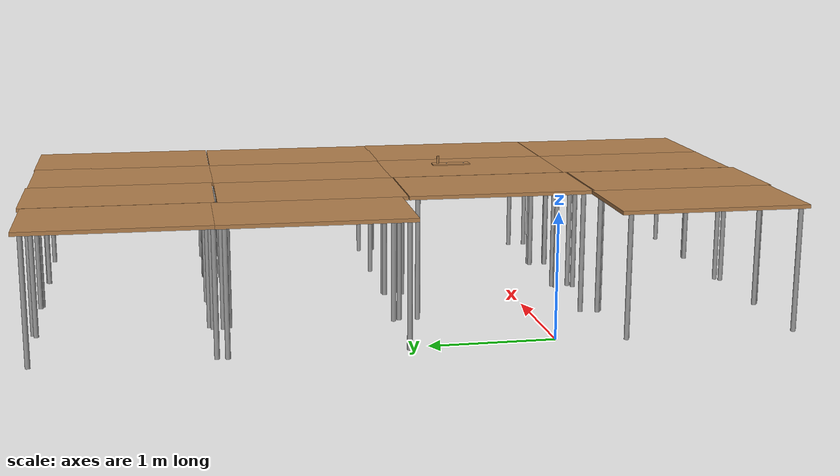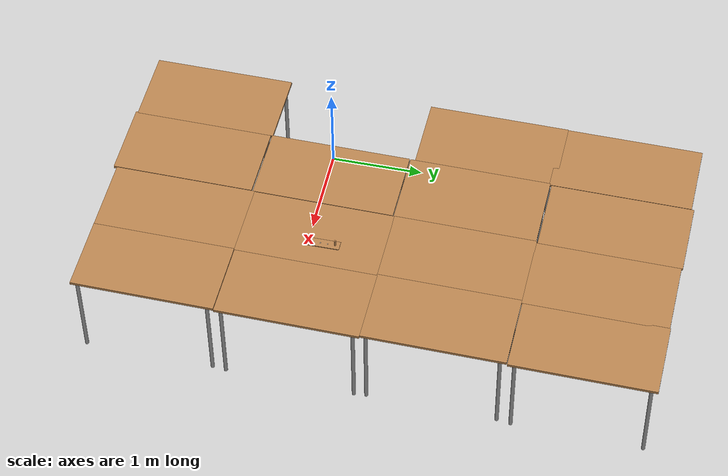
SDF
<sdf version="1.6">
 <world name="default">
  <light name="sun" type="directional">
   <pose>0 0 10 0 -0 0</pose>
   <diffuse>0.8 0.8 0.8 1</diffuse>
   <specular>0.2 0.2 0.2 1</specular>
   <attenuation>
    <range>1000</range>
    <constant>0.9</constant>
    <linear>0.01</linear>
    <quadratic>0.001</quadratic>
   </attenuation>
   <direction>-0.5 0.1 -0.9</direction>
  </light>
  <gravity>0 0 -9.8</gravity>
  <magnetic_field>6e-06 2.3e-05 -4.2e-05</magnetic_field>
  <atmosphere type="adiabatic"/>
  <physics name="default_physics" default="0" type="ode">
   <max_step_size>0.001</max_step_size>
   <real_time_factor>1</real_time_factor>
   <real_time_update_rate>1000</real_time_update_rate>
  </physics>
  <scene><ambient>0.4 0.4 0.4 1</ambient><background>0.7 0.7 0.7 1</background><shadows>1</shadows></scene>
  <spherical_coordinates>
   <surface_model>EARTH_WGS84</surface_model>
   <latitude_deg>0</latitude_deg>
   <longitude_deg>0</longitude_deg>
   <elevation>0</elevation>
   <heading_deg>0</heading_deg>
  </spherical_coordinates>
  <light name="user_directional_light_1" type="directional">
   <pose>121.651 -28.8382 1 0 -0 0</pose>
   <diffuse>0.5 0.5 0.5 1</diffuse>
   <specular>0.1 0.1 0.1 1</specular>
   <direction>0.1 0.1 -0.9</direction>
   <attenuation>
    <range>20</range>
    <constant>0.5</constant>
    <linear>0.01</linear>
    <quadratic>0.001</quadratic>
   </attenuation>
  </light>
  <model name="table">
   <static>1</static>
   <link name="link">
    <collision name="surface">
     <pose>0 0 1 0 -0 0</pose>
     <geometry><box><size>1.5 0.8 0.03</size></box></geometry>
     <surface><friction><ode><mu>0.6</mu><mu2>0.6</mu2></ode></friction></surface>
    </collision>
    <visual name="visual1">
     <pose>0 0 1 0 -0 0</pose>
     <geometry><box><size>1.5 0.8 0.03</size></box></geometry>
     <material>
      <script><uri>file://media/materials/scripts/gazebo.material</uri><name>Gazebo/Wood</name></script>
     </material>
    </visual>
    <collision name="front_left_leg">
     <pose>0.68 0.38 0.5 0 -0 0</pose>
     <geometry><cylinder><radius>0.02</radius><length>1</length></cylinder></geometry>
    </collision>
    <visual name="front_left_leg">
     <pose>0.68 0.38 0.5 0 -0 0</pose>
     <geometry><cylinder><radius>0.02</radius><length>1</length></cylinder></geometry>
     <material>
      <script><uri>file://media/materials/scripts/gazebo.material</uri><name>Gazebo/Grey</name></script>
     </material>
    </visual>
    <collision name="front_right_leg">
     <pose>0.68 -0.38 0.5 0 -0 0</pose>
     <geometry><cylinder><radius>0.02</radius><length>1</length></cylinder></geometry>
    </collision>
    <visual name="front_right_leg">
     <pose>0.68 -0.38 0.5 0 -0 0</pose>
     <geometry><cylinder><radius>0.02</radius><length>1</length></cylinder></geometry>
     <material>
      <script><uri>file://media/materials/scripts/gazebo.material</uri><name>Gazebo/Grey</name></script>
     </material>
    </visual>
    <collision name="back_right_leg">
     <pose>-0.68 -0.38 0.5 0 -0 0</pose>
     <geometry><cylinder><radius>0.02</radius><length>1</length></cylinder></geometry>
    </collision>
    <visual name="back_right_leg">
     <pose>-0.68 -0.38 0.5 0 -0 0</pose>
     <geometry><cylinder><radius>0.02</radius><length>1</length></cylinder></geometry>
     <material>
      <script><uri>file://media/materials/scripts/gazebo.material</uri><name>Gazebo/Grey</name></script>
     </material>
    </visual>
    <collision name="back_left_leg">
     <pose>-0.68 0.38 0.5 0 -0 0</pose>
     <geometry><cylinder><radius>0.02</radius><length>1</length></cylinder></geometry>
    </collision>
    <visual name="back_left_leg">
     <pose>-0.68 0.38 0.5 0 -0 0</pose>
     <geometry><cylinder><radius>0.02</radius><length>1</length></cylinder></geometry>
     <material>
      <script><uri>file://media/materials/scripts/gazebo.material</uri><name>Gazebo/Grey</name></script>
     </material>
    </visual>
   </link>
   <pose>1.0932 0.255722 0 0 0 -1.58617</pose>
  </model>
  <model name="table_clone">
   <static>1</static>
   <link name="link">
    <collision name="surface">
     <pose>0 0 1 0 -0 0</pose>
     <geometry><box><size>1.5 0.8 0.03</size></box></geometry>
     <surface><friction><ode><mu>0.6</mu><mu2>0.6</mu2></ode></friction></surface>
    </collision>
    <visual name="visual1">
     <pose>0 0 1 0 -0 0</pose>
     <geometry><box><size>1.5 0.8 0.03</size></box></geometry>
     <material>
      <script><uri>file://media/materials/scripts/gazebo.material</uri><name>Gazebo/Wood</name></script>
     </material>
    </visual>
    <collision name="front_left_leg">
     <pose>0.68 0.38 0.5 0 -0 0</pose>
     <geometry><cylinder><radius>0.02</radius><length>1</length></cylinder></geometry>
    </collision>
    <visual name="front_left_leg">
     <pose>0.68 0.38 0.5 0 -0 0</pose>
     <geometry><cylinder><radius>0.02</radius><length>1</length></cylinder></geometry>
     <material>
      <script><uri>file://media/materials/scripts/gazebo.material</uri><name>Gazebo/Grey</name></script>
     </material>
    </visual>
    <collision name="front_right_leg">
     <pose>0.68 -0.38 0.5 0 -0 0</pose>
     <geometry><cylinder><radius>0.02</radius><length>1</length></cylinder></geometry>
    </collision>
    <visual name="front_right_leg">
     <pose>0.68 -0.38 0.5 0 -0 0</pose>
     <geometry><cylinder><radius>0.02</radius><length>1</length></cylinder></geometry>
     <material>
      <script><uri>file://media/materials/scripts/gazebo.material</uri><name>Gazebo/Grey</name></script>
     </material>
    </visual>
    <collision name="back_right_leg">
     <pose>-0.68 -0.38 0.5 0 -0 0</pose>
     <geometry><cylinder><radius>0.02</radius><length>1</length></cylinder></geometry>
    </collision>
    <visual name="back_right_leg">
     <pose>-0.68 -0.38 0.5 0 -0 0</pose>
     <geometry><cylinder><radius>0.02</radius><length>1</length></cylinder></geometry>
     <material>
      <script><uri>file://media/materials/scripts/gazebo.material</uri><name>Gazebo/Grey</name></script>
     </material>
    </visual>
    <collision name="back_left_leg">
     <pose>-0.68 0.38 0.5 0 -0 0</pose>
     <geometry><cylinder><radius>0.02</radius><length>1</length></cylinder></geometry>
    </collision>
    <visual name="back_left_leg">
     <pose>-0.68 0.38 0.5 0 -0 0</pose>
     <geometry><cylinder><radius>0.02</radius><length>1</length></cylinder></geometry>
     <material>
      <script><uri>file://media/materials/scripts/gazebo.material</uri><name>Gazebo/Grey</name></script>
     </material>
    </visual>
   </link>
   <pose>1.11915 1.76451 0 0 0 -1.58617</pose>
  </model>
  <model name="table_clone_0">
   <static>1</static>
   <link name="link">
    <collision name="surface">
     <pose>0 0 1 0 -0 0</pose>
     <geometry><box><size>1.5 0.8 0.03</size></box></geometry>
     <surface><friction><ode><mu>0.6</mu><mu2>0.6</mu2></ode></friction></surface>
    </collision>
    <visual name="visual1">
     <pose>0 0 1 0 -0 0</pose>
     <geometry><box><size>1.5 0.8 0.03</size></box></geometry>
     <material>
      <script><uri>file://media/materials/scripts/gazebo.material</uri><name>Gazebo/Wood</name></script>
     </material>
    </visual>
    <collision name="front_left_leg">
     <pose>0.68 0.38 0.5 0 -0 0</pose>
     <geometry><cylinder><radius>0.02</radius><length>1</length></cylinder></geometry>
    </collision>
    <visual name="front_left_leg">
     <pose>0.68 0.38 0.5 0 -0 0</pose>
     <geometry><cylinder><radius>0.02</radius><length>1</length></cylinder></geometry>
     <material>
      <script><uri>file://media/materials/scripts/gazebo.material</uri><name>Gazebo/Grey</name></script>
     </material>
    </visual>
    <collision name="front_right_leg">
     <pose>0.68 -0.38 0.5 0 -0 0</pose>
     <geometry><cylinder><radius>0.02</radius><length>1</length></cylinder></geometry>
    </collision>
    <visual name="front_right_leg">
     <pose>0.68 -0.38 0.5 0 -0 0</pose>
     <geometry><cylinder><radius>0.02</radius><length>1</length></cylinder></geometry>
     <material>
      <script><uri>file://media/materials/scripts/gazebo.material</uri><name>Gazebo/Grey</name></script>
     </material>
    </visual>
    <collision name="back_right_leg">
     <pose>-0.68 -0.38 0.5 0 -0 0</pose>
     <geometry><cylinder><radius>0.02</radius><length>1</length></cylinder></geometry>
    </collision>
    <visual name="back_right_leg">
     <pose>-0.68 -0.38 0.5 0 -0 0</pose>
     <geometry><cylinder><radius>0.02</radius><length>1</length></cylinder></geometry>
     <material>
      <script><uri>file://media/materials/scripts/gazebo.material</uri><name>Gazebo/Grey</name></script>
     </material>
    </visual>
    <collision name="back_left_leg">
     <pose>-0.68 0.38 0.5 0 -0 0</pose>
     <geometry><cylinder><radius>0.02</radius><length>1</length></cylinder></geometry>
    </collision>
    <visual name="back_left_leg">
     <pose>-0.68 0.38 0.5 0 -0 0</pose>
     <geometry><cylinder><radius>0.02</radius><length>1</length></cylinder></geometry>
     <material>
      <script><uri>file://media/materials/scripts/gazebo.material</uri><name>Gazebo/Grey</name></script>
     </material>
    </visual>
   </link>
   <pose>1.06396 -1.2587 0 0 0 -1.58617</pose>
  </model>
  <model name="table_clone_1">
   <static>1</static>
   <link name="link">
    <collision name="surface">
     <pose>0 0 1 0 -0 0</pose>
     <geometry><box><size>1.5 0.8 0.03</size></box></geometry>
     <surface><friction><ode><mu>0.6</mu><mu2>0.6</mu2></ode></friction></surface>
    </collision>
    <visual name="visual1">
     <pose>0 0 1 0 -0 0</pose>
     <geometry><box><size>1.5 0.8 0.03</size></box></geometry>
     <material>
      <script><uri>file://media/materials/scripts/gazebo.material</uri><name>Gazebo/Wood</name></script>
     </material>
    </visual>
    <collision name="front_left_leg">
     <pose>0.68 0.38 0.5 0 -0 0</pose>
     <geometry><cylinder><radius>0.02</radius><length>1</length></cylinder></geometry>
    </collision>
    <visual name="front_left_leg">
     <pose>0.68 0.38 0.5 0 -0 0</pose>
     <geometry><cylinder><radius>0.02</radius><length>1</length></cylinder></geometry>
     <material>
      <script><uri>file://media/materials/scripts/gazebo.material</uri><name>Gazebo/Grey</name></script>
     </material>
    </visual>
    <collision name="front_right_leg">
     <pose>0.68 -0.38 0.5 0 -0 0</pose>
     <geometry><cylinder><radius>0.02</radius><length>1</length></cylinder></geometry>
    </collision>
    <visual name="front_right_leg">
     <pose>0.68 -0.38 0.5 0 -0 0</pose>
     <geometry><cylinder><radius>0.02</radius><length>1</length></cylinder></geometry>
     <material>
      <script><uri>file://media/materials/scripts/gazebo.material</uri><name>Gazebo/Grey</name></script>
     </material>
    </visual>
    <collision name="back_right_leg">
     <pose>-0.68 -0.38 0.5 0 -0 0</pose>
     <geometry><cylinder><radius>0.02</radius><length>1</length></cylinder></geometry>
    </collision>
    <visual name="back_right_leg">
     <pose>-0.68 -0.38 0.5 0 -0 0</pose>
     <geometry><cylinder><radius>0.02</radius><length>1</length></cylinder></geometry>
     <material>
      <script><uri>file://media/materials/scripts/gazebo.material</uri><name>Gazebo/Grey</name></script>
     </material>
    </visual>
    <collision name="back_left_leg">
     <pose>-0.68 0.38 0.5 0 -0 0</pose>
     <geometry><cylinder><radius>0.02</radius><length>1</length></cylinder></geometry>
    </collision>
    <visual name="back_left_leg">
     <pose>-0.68 0.38 0.5 0 -0 0</pose>
     <geometry><cylinder><radius>0.02</radius><length>1</length></cylinder></geometry>
     <material>
      <script><uri>file://media/materials/scripts/gazebo.material</uri><name>Gazebo/Grey</name></script>
     </material>
    </visual>
   </link>
   <pose>1.91726 1.7593 0 0 0 -1.58617</pose>
  </model>
  <model name="table_clone_2">
   <static>1</static>
   <link name="link">
    <collision name="surface">
     <pose>0 0 1 0 -0 0</pose>
     <geometry><box><size>1.5 0.8 0.03</size></box></geometry>
     <surface><friction><ode><mu>0.6</mu><mu2>0.6</mu2></ode></friction></surface>
    </collision>
    <visual name="visual1">
     <pose>0 0 1 0 -0 0</pose>
     <geometry><box><size>1.5 0.8 0.03</size></box></geometry>
     <material>
      <script><uri>file://media/materials/scripts/gazebo.material</uri><name>Gazebo/Wood</name></script>
     </material>
    </visual>
    <collision name="front_left_leg">
     <pose>0.68 0.38 0.5 0 -0 0</pose>
     <geometry><cylinder><radius>0.02</radius><length>1</length></cylinder></geometry>
    </collision>
    <visual name="front_left_leg">
     <pose>0.68 0.38 0.5 0 -0 0</pose>
     <geometry><cylinder><radius>0.02</radius><length>1</length></cylinder></geometry>
     <material>
      <script><uri>file://media/materials/scripts/gazebo.material</uri><name>Gazebo/Grey</name></script>
     </material>
    </visual>
    <collision name="front_right_leg">
     <pose>0.68 -0.38 0.5 0 -0 0</pose>
     <geometry><cylinder><radius>0.02</radius><length>1</length></cylinder></geometry>
    </collision>
    <visual name="front_right_leg">
     <pose>0.68 -0.38 0.5 0 -0 0</pose>
     <geometry><cylinder><radius>0.02</radius><length>1</length></cylinder></geometry>
     <material>
      <script><uri>file://media/materials/scripts/gazebo.material</uri><name>Gazebo/Grey</name></script>
     </material>
    </visual>
    <collision name="back_right_leg">
     <pose>-0.68 -0.38 0.5 0 -0 0</pose>
     <geometry><cylinder><radius>0.02</radius><length>1</length></cylinder></geometry>
    </collision>
    <visual name="back_right_leg">
     <pose>-0.68 -0.38 0.5 0 -0 0</pose>
     <geometry><cylinder><radius>0.02</radius><length>1</length></cylinder></geometry>
     <material>
      <script><uri>file://media/materials/scripts/gazebo.material</uri><name>Gazebo/Grey</name></script>
     </material>
    </visual>
    <collision name="back_left_leg">
     <pose>-0.68 0.38 0.5 0 -0 0</pose>
     <geometry><cylinder><radius>0.02</radius><length>1</length></cylinder></geometry>
    </collision>
    <visual name="back_left_leg">
     <pose>-0.68 0.38 0.5 0 -0 0</pose>
     <geometry><cylinder><radius>0.02</radius><length>1</length></cylinder></geometry>
     <material>
      <script><uri>file://media/materials/scripts/gazebo.material</uri><name>Gazebo/Grey</name></script>
     </material>
    </visual>
   </link>
   <pose>1.8988 0.262927 0 0 0 -1.58617</pose>
  </model>
  <model name="table_clone_3">
   <static>1</static>
   <link name="link">
    <collision name="surface">
     <pose>0 0 1 0 -0 0</pose>
     <geometry><box><size>1.5 0.8 0.03</size></box></geometry>
     <surface><friction><ode><mu>0.6</mu><mu2>0.6</mu2></ode></friction></surface>
    </collision>
    <visual name="visual1">
     <pose>0 0 1 0 -0 0</pose>
     <geometry><box><size>1.5 0.8 0.03</size></box></geometry>
     <material>
      <script><uri>file://media/materials/scripts/gazebo.material</uri><name>Gazebo/Wood</name></script>
     </material>
    </visual>
    <collision name="front_left_leg">
     <pose>0.68 0.38 0.5 0 -0 0</pose>
     <geometry><cylinder><radius>0.02</radius><length>1</length></cylinder></geometry>
    </collision>
    <visual name="front_left_leg">
     <pose>0.68 0.38 0.5 0 -0 0</pose>
     <geometry><cylinder><radius>0.02</radius><length>1</length></cylinder></geometry>
     <material>
      <script><uri>file://media/materials/scripts/gazebo.material</uri><name>Gazebo/Grey</name></script>
     </material>
    </visual>
    <collision name="front_right_leg">
     <pose>0.68 -0.38 0.5 0 -0 0</pose>
     <geometry><cylinder><radius>0.02</radius><length>1</length></cylinder></geometry>
    </collision>
    <visual name="front_right_leg">
     <pose>0.68 -0.38 0.5 0 -0 0</pose>
     <geometry><cylinder><radius>0.02</radius><length>1</length></cylinder></geometry>
     <material>
      <script><uri>file://media/materials/scripts/gazebo.material</uri><name>Gazebo/Grey</name></script>
     </material>
    </visual>
    <collision name="back_right_leg">
     <pose>-0.68 -0.38 0.5 0 -0 0</pose>
     <geometry><cylinder><radius>0.02</radius><length>1</length></cylinder></geometry>
    </collision>
    <visual name="back_right_leg">
     <pose>-0.68 -0.38 0.5 0 -0 0</pose>
     <geometry><cylinder><radius>0.02</radius><length>1</length></cylinder></geometry>
     <material>
      <script><uri>file://media/materials/scripts/gazebo.material</uri><name>Gazebo/Grey</name></script>
     </material>
    </visual>
    <collision name="back_left_leg">
     <pose>-0.68 0.38 0.5 0 -0 0</pose>
     <geometry><cylinder><radius>0.02</radius><length>1</length></cylinder></geometry>
    </collision>
    <visual name="back_left_leg">
     <pose>-0.68 0.38 0.5 0 -0 0</pose>
     <geometry><cylinder><radius>0.02</radius><length>1</length></cylinder></geometry>
     <material>
      <script><uri>file://media/materials/scripts/gazebo.material</uri><name>Gazebo/Grey</name></script>
     </material>
    </visual>
   </link>
   <pose>1.8696 -1.23565 0 0 0 -1.58617</pose>
  </model>
  <model name="table_clone_4">
   <static>1</static>
   <link name="link">
    <collision name="surface">
     <pose>0 0 1 0 -0 0</pose>
     <geometry><box><size>1.5 0.8 0.03</size></box></geometry>
     <surface><friction><ode><mu>0.6</mu><mu2>0.6</mu2></ode></friction></surface>
    </collision>
    <visual name="visual1">
     <pose>0 0 1 0 -0 0</pose>
     <geometry><box><size>1.5 0.8 0.03</size></box></geometry>
     <material>
      <script><uri>file://media/materials/scripts/gazebo.material</uri><name>Gazebo/Wood</name></script>
     </material>
    </visual>
    <collision name="front_left_leg">
     <pose>0.68 0.38 0.5 0 -0 0</pose>
     <geometry><cylinder><radius>0.02</radius><length>1</length></cylinder></geometry>
    </collision>
    <visual name="front_left_leg">
     <pose>0.68 0.38 0.5 0 -0 0</pose>
     <geometry><cylinder><radius>0.02</radius><length>1</length></cylinder></geometry>
     <material>
      <script><uri>file://media/materials/scripts/gazebo.material</uri><name>Gazebo/Grey</name></script>
     </material>
    </visual>
    <collision name="front_right_leg">
     <pose>0.68 -0.38 0.5 0 -0 0</pose>
     <geometry><cylinder><radius>0.02</radius><length>1</length></cylinder></geometry>
    </collision>
    <visual name="front_right_leg">
     <pose>0.68 -0.38 0.5 0 -0 0</pose>
     <geometry><cylinder><radius>0.02</radius><length>1</length></cylinder></geometry>
     <material>
      <script><uri>file://media/materials/scripts/gazebo.material</uri><name>Gazebo/Grey</name></script>
     </material>
    </visual>
    <collision name="back_right_leg">
     <pose>-0.68 -0.38 0.5 0 -0 0</pose>
     <geometry><cylinder><radius>0.02</radius><length>1</length></cylinder></geometry>
    </collision>
    <visual name="back_right_leg">
     <pose>-0.68 -0.38 0.5 0 -0 0</pose>
     <geometry><cylinder><radius>0.02</radius><length>1</length></cylinder></geometry>
     <material>
      <script><uri>file://media/materials/scripts/gazebo.material</uri><name>Gazebo/Grey</name></script>
     </material>
    </visual>
    <collision name="back_left_leg">
     <pose>-0.68 0.38 0.5 0 -0 0</pose>
     <geometry><cylinder><radius>0.02</radius><length>1</length></cylinder></geometry>
    </collision>
    <visual name="back_left_leg">
     <pose>-0.68 0.38 0.5 0 -0 0</pose>
     <geometry><cylinder><radius>0.02</radius><length>1</length></cylinder></geometry>
     <material>
      <script><uri>file://media/materials/scripts/gazebo.material</uri><name>Gazebo/Grey</name></script>
     </material>
    </visual>
   </link>
   <pose>2.705 1.74387 0 0 0 -1.58617</pose>
  </model>
  <model name="table_clone_5">
   <static>1</static>
   <link name="link">
    <collision name="surface">
     <pose>0 0 1 0 -0 0</pose>
     <geometry><box><size>1.5 0.8 0.03</size></box></geometry>
     <surface><friction><ode><mu>0.6</mu><mu2>0.6</mu2></ode></friction></surface>
    </collision>
    <visual name="visual1">
     <pose>0 0 1 0 -0 0</pose>
     <geometry><box><size>1.5 0.8 0.03</size></box></geometry>
     <material>
      <script><uri>file://media/materials/scripts/gazebo.material</uri><name>Gazebo/Wood</name></script>
     </material>
    </visual>
    <collision name="front_left_leg">
     <pose>0.68 0.38 0.5 0 -0 0</pose>
     <geometry><cylinder><radius>0.02</radius><length>1</length></cylinder></geometry>
    </collision>
    <visual name="front_left_leg">
     <pose>0.68 0.38 0.5 0 -0 0</pose>
     <geometry><cylinder><radius>0.02</radius><length>1</length></cylinder></geometry>
     <material>
      <script><uri>file://media/materials/scripts/gazebo.material</uri><name>Gazebo/Grey</name></script>
     </material>
    </visual>
    <collision name="front_right_leg">
     <pose>0.68 -0.38 0.5 0 -0 0</pose>
     <geometry><cylinder><radius>0.02</radius><length>1</length></cylinder></geometry>
    </collision>
    <visual name="front_right_leg">
     <pose>0.68 -0.38 0.5 0 -0 0</pose>
     <geometry><cylinder><radius>0.02</radius><length>1</length></cylinder></geometry>
     <material>
      <script><uri>file://media/materials/scripts/gazebo.material</uri><name>Gazebo/Grey</name></script>
     </material>
    </visual>
    <collision name="back_right_leg">
     <pose>-0.68 -0.38 0.5 0 -0 0</pose>
     <geometry><cylinder><radius>0.02</radius><length>1</length></cylinder></geometry>
    </collision>
    <visual name="back_right_leg">
     <pose>-0.68 -0.38 0.5 0 -0 0</pose>
     <geometry><cylinder><radius>0.02</radius><length>1</length></cylinder></geometry>
     <material>
      <script><uri>file://media/materials/scripts/gazebo.material</uri><name>Gazebo/Grey</name></script>
     </material>
    </visual>
    <collision name="back_left_leg">
     <pose>-0.68 0.38 0.5 0 -0 0</pose>
     <geometry><cylinder><radius>0.02</radius><length>1</length></cylinder></geometry>
    </collision>
    <visual name="back_left_leg">
     <pose>-0.68 0.38 0.5 0 -0 0</pose>
     <geometry><cylinder><radius>0.02</radius><length>1</length></cylinder></geometry>
     <material>
      <script><uri>file://media/materials/scripts/gazebo.material</uri><name>Gazebo/Grey</name></script>
     </material>
    </visual>
   </link>
   <pose>2.69696 0.255898 0 0 0 -1.58617</pose>
  </model>
  <model name="table_clone_6">
   <static>1</static>
   <link name="link">
    <collision name="surface">
     <pose>0 0 1 0 -0 0</pose>
     <geometry><box><size>1.5 0.8 0.03</size></box></geometry>
     <surface><friction><ode><mu>0.6</mu><mu2>0.6</mu2></ode></friction></surface>
    </collision>
    <visual name="visual1">
     <pose>0 0 1 0 -0 0</pose>
     <geometry><box><size>1.5 0.8 0.03</size></box></geometry>
     <material>
      <script><uri>file://media/materials/scripts/gazebo.material</uri><name>Gazebo/Wood</name></script>
     </material>
    </visual>
    <collision name="front_left_leg">
     <pose>0.68 0.38 0.5 0 -0 0</pose>
     <geometry><cylinder><radius>0.02</radius><length>1</length></cylinder></geometry>
    </collision>
    <visual name="front_left_leg">
     <pose>0.68 0.38 0.5 0 -0 0</pose>
     <geometry><cylinder><radius>0.02</radius><length>1</length></cylinder></geometry>
     <material>
      <script><uri>file://media/materials/scripts/gazebo.material</uri><name>Gazebo/Grey</name></script>
     </material>
    </visual>
    <collision name="front_right_leg">
     <pose>0.68 -0.38 0.5 0 -0 0</pose>
     <geometry><cylinder><radius>0.02</radius><length>1</length></cylinder></geometry>
    </collision>
    <visual name="front_right_leg">
     <pose>0.68 -0.38 0.5 0 -0 0</pose>
     <geometry><cylinder><radius>0.02</radius><length>1</length></cylinder></geometry>
     <material>
      <script><uri>file://media/materials/scripts/gazebo.material</uri><name>Gazebo/Grey</name></script>
     </material>
    </visual>
    <collision name="back_right_leg">
     <pose>-0.68 -0.38 0.5 0 -0 0</pose>
     <geometry><cylinder><radius>0.02</radius><length>1</length></cylinder></geometry>
    </collision>
    <visual name="back_right_leg">
     <pose>-0.68 -0.38 0.5 0 -0 0</pose>
     <geometry><cylinder><radius>0.02</radius><length>1</length></cylinder></geometry>
     <material>
      <script><uri>file://media/materials/scripts/gazebo.material</uri><name>Gazebo/Grey</name></script>
     </material>
    </visual>
    <collision name="back_left_leg">
     <pose>-0.68 0.38 0.5 0 -0 0</pose>
     <geometry><cylinder><radius>0.02</radius><length>1</length></cylinder></geometry>
    </collision>
    <visual name="back_left_leg">
     <pose>-0.68 0.38 0.5 0 -0 0</pose>
     <geometry><cylinder><radius>0.02</radius><length>1</length></cylinder></geometry>
     <material>
      <script><uri>file://media/materials/scripts/gazebo.material</uri><name>Gazebo/Grey</name></script>
     </material>
    </visual>
   </link>
   <pose>2.66103 -1.24933 0 0 0 -1.58617</pose>
  </model>
  <model name="table_clone_7">
   <static>1</static>
   <link name="link">
    <collision name="surface">
     <pose>0 0 1 0 -0 0</pose>
     <geometry><box><size>1.5 0.8 0.03</size></box></geometry>
     <surface><friction><ode><mu>0.6</mu><mu2>0.6</mu2></ode></friction></surface>
    </collision>
    <visual name="visual1">
     <pose>0 0 1 0 -0 0</pose>
     <geometry><box><size>1.5 0.8 0.03</size></box></geometry>
     <material>
      <script><uri>file://media/materials/scripts/gazebo.material</uri><name>Gazebo/Wood</name></script>
     </material>
    </visual>
    <collision name="front_left_leg">
     <pose>0.68 0.38 0.5 0 -0 0</pose>
     <geometry><cylinder><radius>0.02</radius><length>1</length></cylinder></geometry>
    </collision>
    <visual name="front_left_leg">
     <pose>0.68 0.38 0.5 0 -0 0</pose>
     <geometry><cylinder><radius>0.02</radius><length>1</length></cylinder></geometry>
     <material>
      <script><uri>file://media/materials/scripts/gazebo.material</uri><name>Gazebo/Grey</name></script>
     </material>
    </visual>
    <collision name="front_right_leg">
     <pose>0.68 -0.38 0.5 0 -0 0</pose>
     <geometry><cylinder><radius>0.02</radius><length>1</length></cylinder></geometry>
    </collision>
    <visual name="front_right_leg">
     <pose>0.68 -0.38 0.5 0 -0 0</pose>
     <geometry><cylinder><radius>0.02</radius><length>1</length></cylinder></geometry>
     <material>
      <script><uri>file://media/materials/scripts/gazebo.material</uri><name>Gazebo/Grey</name></script>
     </material>
    </visual>
    <collision name="back_right_leg">
     <pose>-0.68 -0.38 0.5 0 -0 0</pose>
     <geometry><cylinder><radius>0.02</radius><length>1</length></cylinder></geometry>
    </collision>
    <visual name="back_right_leg">
     <pose>-0.68 -0.38 0.5 0 -0 0</pose>
     <geometry><cylinder><radius>0.02</radius><length>1</length></cylinder></geometry>
     <material>
      <script><uri>file://media/materials/scripts/gazebo.material</uri><name>Gazebo/Grey</name></script>
     </material>
    </visual>
    <collision name="back_left_leg">
     <pose>-0.68 0.38 0.5 0 -0 0</pose>
     <geometry><cylinder><radius>0.02</radius><length>1</length></cylinder></geometry>
    </collision>
    <visual name="back_left_leg">
     <pose>-0.68 0.38 0.5 0 -0 0</pose>
     <geometry><cylinder><radius>0.02</radius><length>1</length></cylinder></geometry>
     <material>
      <script><uri>file://media/materials/scripts/gazebo.material</uri><name>Gazebo/Grey</name></script>
     </material>
    </visual>
   </link>
   <pose>1.16734 3.28022 0 0 0 -1.58617</pose>
  </model>
  <model name="table_clone_8">
   <static>1</static>
   <link name="link">
    <collision name="surface">
     <pose>0 0 1 0 -0 0</pose>
     <geometry><box><size>1.5 0.8 0.03</size></box></geometry>
     <surface><friction><ode><mu>0.6</mu><mu2>0.6</mu2></ode></friction></surface>
    </collision>
    <visual name="visual1">
     <pose>0 0 1 0 -0 0</pose>
     <geometry><box><size>1.5 0.8 0.03</size></box></geometry>
     <material>
      <script><uri>file://media/materials/scripts/gazebo.material</uri><name>Gazebo/Wood</name></script>
     </material>
    </visual>
    <collision name="front_left_leg">
     <pose>0.68 0.38 0.5 0 -0 0</pose>
     <geometry><cylinder><radius>0.02</radius><length>1</length></cylinder></geometry>
    </collision>
    <visual name="front_left_leg">
     <pose>0.68 0.38 0.5 0 -0 0</pose>
     <geometry><cylinder><radius>0.02</radius><length>1</length></cylinder></geometry>
     <material>
      <script><uri>file://media/materials/scripts/gazebo.material</uri><name>Gazebo/Grey</name></script>
     </material>
    </visual>
    <collision name="front_right_leg">
     <pose>0.68 -0.38 0.5 0 -0 0</pose>
     <geometry><cylinder><radius>0.02</radius><length>1</length></cylinder></geometry>
    </collision>
    <visual name="front_right_leg">
     <pose>0.68 -0.38 0.5 0 -0 0</pose>
     <geometry><cylinder><radius>0.02</radius><length>1</length></cylinder></geometry>
     <material>
      <script><uri>file://media/materials/scripts/gazebo.material</uri><name>Gazebo/Grey</name></script>
     </material>
    </visual>
    <collision name="back_right_leg">
     <pose>-0.68 -0.38 0.5 0 -0 0</pose>
     <geometry><cylinder><radius>0.02</radius><length>1</length></cylinder></geometry>
    </collision>
    <visual name="back_right_leg">
     <pose>-0.68 -0.38 0.5 0 -0 0</pose>
     <geometry><cylinder><radius>0.02</radius><length>1</length></cylinder></geometry>
     <material>
      <script><uri>file://media/materials/scripts/gazebo.material</uri><name>Gazebo/Grey</name></script>
     </material>
    </visual>
    <collision name="back_left_leg">
     <pose>-0.68 0.38 0.5 0 -0 0</pose>
     <geometry><cylinder><radius>0.02</radius><length>1</length></cylinder></geometry>
    </collision>
    <visual name="back_left_leg">
     <pose>-0.68 0.38 0.5 0 -0 0</pose>
     <geometry><cylinder><radius>0.02</radius><length>1</length></cylinder></geometry>
     <material>
      <script><uri>file://media/materials/scripts/gazebo.material</uri><name>Gazebo/Grey</name></script>
     </material>
    </visual>
   </link>
   <pose>1.96559 3.25457 0 0 0 -1.58617</pose>
  </model>
  <model name="table_clone_9">
   <static>1</static>
   <link name="link">
    <collision name="surface">
     <pose>0 0 1 0 -0 0</pose>
     <geometry><box><size>1.5 0.8 0.03</size></box></geometry>
     <surface><friction><ode><mu>0.6</mu><mu2>0.6</mu2></ode></friction></surface>
    </collision>
    <visual name="visual1">
     <pose>0 0 1 0 -0 0</pose>
     <geometry><box><size>1.5 0.8 0.03</size></box></geometry>
     <material>
      <script><uri>file://media/materials/scripts/gazebo.material</uri><name>Gazebo/Wood</name></script>
     </material>
    </visual>
    <collision name="front_left_leg">
     <pose>0.68 0.38 0.5 0 -0 0</pose>
     <geometry><cylinder><radius>0.02</radius><length>1</length></cylinder></geometry>
    </collision>
    <visual name="front_left_leg">
     <pose>0.68 0.38 0.5 0 -0 0</pose>
     <geometry><cylinder><radius>0.02</radius><length>1</length></cylinder></geometry>
     <material>
      <script><uri>file://media/materials/scripts/gazebo.material</uri><name>Gazebo/Grey</name></script>
     </material>
    </visual>
    <collision name="front_right_leg">
     <pose>0.68 -0.38 0.5 0 -0 0</pose>
     <geometry><cylinder><radius>0.02</radius><length>1</length></cylinder></geometry>
    </collision>
    <visual name="front_right_leg">
     <pose>0.68 -0.38 0.5 0 -0 0</pose>
     <geometry><cylinder><radius>0.02</radius><length>1</length></cylinder></geometry>
     <material>
      <script><uri>file://media/materials/scripts/gazebo.material</uri><name>Gazebo/Grey</name></script>
     </material>
    </visual>
    <collision name="back_right_leg">
     <pose>-0.68 -0.38 0.5 0 -0 0</pose>
     <geometry><cylinder><radius>0.02</radius><length>1</length></cylinder></geometry>
    </collision>
    <visual name="back_right_leg">
     <pose>-0.68 -0.38 0.5 0 -0 0</pose>
     <geometry><cylinder><radius>0.02</radius><length>1</length></cylinder></geometry>
     <material>
      <script><uri>file://media/materials/scripts/gazebo.material</uri><name>Gazebo/Grey</name></script>
     </material>
    </visual>
    <collision name="back_left_leg">
     <pose>-0.68 0.38 0.5 0 -0 0</pose>
     <geometry><cylinder><radius>0.02</radius><length>1</length></cylinder></geometry>
    </collision>
    <visual name="back_left_leg">
     <pose>-0.68 0.38 0.5 0 -0 0</pose>
     <geometry><cylinder><radius>0.02</radius><length>1</length></cylinder></geometry>
     <material>
      <script><uri>file://media/materials/scripts/gazebo.material</uri><name>Gazebo/Grey</name></script>
     </material>
    </visual>
   </link>
   <pose>0.276605 -1.22501 0 0 0 -1.58617</pose>
  </model>
  <model name="table_clone_10">
   <static>1</static>
   <link name="link">
    <collision name="surface">
     <pose>0 0 1 0 -0 0</pose>
     <geometry><box><size>1.5 0.8 0.03</size></box></geometry>
     <surface><friction><ode><mu>0.6</mu><mu2>0.6</mu2></ode></friction></surface>
    </collision>
    <visual name="visual1">
     <pose>0 0 1 0 -0 0</pose>
     <geometry><box><size>1.5 0.8 0.03</size></box></geometry>
     <material>
      <script><uri>file://media/materials/scripts/gazebo.material</uri><name>Gazebo/Wood</name></script>
     </material>
    </visual>
    <collision name="front_left_leg">
     <pose>0.68 0.38 0.5 0 -0 0</pose>
     <geometry><cylinder><radius>0.02</radius><length>1</length></cylinder></geometry>
    </collision>
    <visual name="front_left_leg">
     <pose>0.68 0.38 0.5 0 -0 0</pose>
     <geometry><cylinder><radius>0.02</radius><length>1</length></cylinder></geometry>
     <material>
      <script><uri>file://media/materials/scripts/gazebo.material</uri><name>Gazebo/Grey</name></script>
     </material>
    </visual>
    <collision name="front_right_leg">
     <pose>0.68 -0.38 0.5 0 -0 0</pose>
     <geometry><cylinder><radius>0.02</radius><length>1</length></cylinder></geometry>
    </collision>
    <visual name="front_right_leg">
     <pose>0.68 -0.38 0.5 0 -0 0</pose>
     <geometry><cylinder><radius>0.02</radius><length>1</length></cylinder></geometry>
     <material>
      <script><uri>file://media/materials/scripts/gazebo.material</uri><name>Gazebo/Grey</name></script>
     </material>
    </visual>
    <collision name="back_right_leg">
     <pose>-0.68 -0.38 0.5 0 -0 0</pose>
     <geometry><cylinder><radius>0.02</radius><length>1</length></cylinder></geometry>
    </collision>
    <visual name="back_right_leg">
     <pose>-0.68 -0.38 0.5 0 -0 0</pose>
     <geometry><cylinder><radius>0.02</radius><length>1</length></cylinder></geometry>
     <material>
      <script><uri>file://media/materials/scripts/gazebo.material</uri><name>Gazebo/Grey</name></script>
     </material>
    </visual>
    <collision name="back_left_leg">
     <pose>-0.68 0.38 0.5 0 -0 0</pose>
     <geometry><cylinder><radius>0.02</radius><length>1</length></cylinder></geometry>
    </collision>
    <visual name="back_left_leg">
     <pose>-0.68 0.38 0.5 0 -0 0</pose>
     <geometry><cylinder><radius>0.02</radius><length>1</length></cylinder></geometry>
     <material>
      <script><uri>file://media/materials/scripts/gazebo.material</uri><name>Gazebo/Grey</name></script>
     </material>
    </visual>
   </link>
   <pose>0.333664 1.82645 0 0 0 -1.58617</pose>
  </model>
  <model name="table_clone_11">
   <static>1</static>
   <link name="link">
    <collision name="surface">
     <pose>0 0 1 0 -0 0</pose>
     <geometry><box><size>1.5 0.8 0.03</size></box></geometry>
     <surface><friction><ode><mu>0.6</mu><mu2>0.6</mu2></ode></friction></surface>
    </collision>
    <visual name="visual1">
     <pose>0 0 1 0 -0 0</pose>
     <geometry><box><size>1.5 0.8 0.03</size></box></geometry>
     <material>
      <script><uri>file://media/materials/scripts/gazebo.material</uri><name>Gazebo/Wood</name></script>
     </material>
    </visual>
    <collision name="front_left_leg">
     <pose>0.68 0.38 0.5 0 -0 0</pose>
     <geometry><cylinder><radius>0.02</radius><length>1</length></cylinder></geometry>
    </collision>
    <visual name="front_left_leg">
     <pose>0.68 0.38 0.5 0 -0 0</pose>
     <geometry><cylinder><radius>0.02</radius><length>1</length></cylinder></geometry>
     <material>
      <script><uri>file://media/materials/scripts/gazebo.material</uri><name>Gazebo/Grey</name></script>
     </material>
    </visual>
    <collision name="front_right_leg">
     <pose>0.68 -0.38 0.5 0 -0 0</pose>
     <geometry><cylinder><radius>0.02</radius><length>1</length></cylinder></geometry>
    </collision>
    <visual name="front_right_leg">
     <pose>0.68 -0.38 0.5 0 -0 0</pose>
     <geometry><cylinder><radius>0.02</radius><length>1</length></cylinder></geometry>
     <material>
      <script><uri>file://media/materials/scripts/gazebo.material</uri><name>Gazebo/Grey</name></script>
     </material>
    </visual>
    <collision name="back_right_leg">
     <pose>-0.68 -0.38 0.5 0 -0 0</pose>
     <geometry><cylinder><radius>0.02</radius><length>1</length></cylinder></geometry>
    </collision>
    <visual name="back_right_leg">
     <pose>-0.68 -0.38 0.5 0 -0 0</pose>
     <geometry><cylinder><radius>0.02</radius><length>1</length></cylinder></geometry>
     <material>
      <script><uri>file://media/materials/scripts/gazebo.material</uri><name>Gazebo/Grey</name></script>
     </material>
    </visual>
    <collision name="back_left_leg">
     <pose>-0.68 0.38 0.5 0 -0 0</pose>
     <geometry><cylinder><radius>0.02</radius><length>1</length></cylinder></geometry>
    </collision>
    <visual name="back_left_leg">
     <pose>-0.68 0.38 0.5 0 -0 0</pose>
     <geometry><cylinder><radius>0.02</radius><length>1</length></cylinder></geometry>
     <material>
      <script><uri>file://media/materials/scripts/gazebo.material</uri><name>Gazebo/Grey</name></script>
     </material>
    </visual>
   </link>
   <pose>0.362738 3.26626 0 0 0 -1.58617</pose>
  </model>
  <model name="table_clone_8_clone">
   <static>1</static>
   <link name="link">
    <collision name="surface">
     <pose>0 0 1 0 -0 0</pose>
     <geometry><box><size>1.5 0.8 0.03</size></box></geometry>
     <surface><friction><ode><mu>0.6</mu><mu2>0.6</mu2></ode></friction></surface>
    </collision>
    <visual name="visual1">
     <pose>0 0 1 0 -0 0</pose>
     <geometry><box><size>1.5 0.8 0.03</size></box></geometry>
     <material>
      <script><uri>file://media/materials/scripts/gazebo.material</uri><name>Gazebo/Wood</name></script>
     </material>
    </visual>
    <collision name="front_left_leg">
     <pose>0.68 0.38 0.5 0 -0 0</pose>
     <geometry><cylinder><radius>0.02</radius><length>1</length></cylinder></geometry>
    </collision>
    <visual name="front_left_leg">
     <pose>0.68 0.38 0.5 0 -0 0</pose>
     <geometry><cylinder><radius>0.02</radius><length>1</length></cylinder></geometry>
     <material>
      <script><uri>file://media/materials/scripts/gazebo.material</uri><name>Gazebo/Grey</name></script>
     </material>
    </visual>
    <collision name="front_right_leg">
     <pose>0.68 -0.38 0.5 0 -0 0</pose>
     <geometry><cylinder><radius>0.02</radius><length>1</length></cylinder></geometry>
    </collision>
    <visual name="front_right_leg">
     <pose>0.68 -0.38 0.5 0 -0 0</pose>
     <geometry><cylinder><radius>0.02</radius><length>1</length></cylinder></geometry>
     <material>
      <script><uri>file://media/materials/scripts/gazebo.material</uri><name>Gazebo/Grey</name></script>
     </material>
    </visual>
    <collision name="back_right_leg">
     <pose>-0.68 -0.38 0.5 0 -0 0</pose>
     <geometry><cylinder><radius>0.02</radius><length>1</length></cylinder></geometry>
    </collision>
    <visual name="back_right_leg">
     <pose>-0.68 -0.38 0.5 0 -0 0</pose>
     <geometry><cylinder><radius>0.02</radius><length>1</length></cylinder></geometry>
     <material>
      <script><uri>file://media/materials/scripts/gazebo.material</uri><name>Gazebo/Grey</name></script>
     </material>
    </visual>
    <collision name="back_left_leg">
     <pose>-0.68 0.38 0.5 0 -0 0</pose>
     <geometry><cylinder><radius>0.02</radius><length>1</length></cylinder></geometry>
    </collision>
    <visual name="back_left_leg">
     <pose>-0.68 0.38 0.5 0 -0 0</pose>
     <geometry><cylinder><radius>0.02</radius><length>1</length></cylinder></geometry>
     <material>
      <script><uri>file://media/materials/scripts/gazebo.material</uri><name>Gazebo/Grey</name></script>
     </material>
    </visual>
   </link>
   <pose>2.74646 3.25089 0 0 0 -1.58617</pose>
  </model>
  <model name="wooden_peg_board">
   <link name="wooden_board::base">
    <pose>0 0 0.00523 0 -0 0</pose>
    <inertial>
     <mass>0.2765</mass>
     <inertia>
      <ixx>0.0025148</ixx>
      <ixy>0</ixy>
      <ixz>0</ixz>
      <iyy>0.00024037</iyy>
      <iyz>0</iyz>
      <izz>0.00275013</izz>
     </inertia>
    </inertial>
    <collision name="collision">
     <geometry><box><size>0.1016 0.3302 0.01046</size></box></geometry>
     <surface>
      <contact>
       <poissons_ratio>0.347</poissons_ratio>
       <elastic_modulus>8.8e+09</elastic_modulus>
       <ode><kp>100000</kp><kd>100</kd><max_vel>100</max_vel><min_depth>0.001</min_depth></ode>
      </contact>
      <friction>
       <torsional>
        <coefficient>1</coefficient>
        <use_patch_radius>0</use_patch_radius>
        <surface_radius>0.01</surface_radius>
       </torsional>
      </friction>
     </surface>
    </collision>
    <visual name="visual">
     <geometry><box><size>0.1016 0.3302 0.01046</size></box></geometry>
     <material>
      <script><uri>file://media/materials/scripts/gazebo.material</uri><name>Gazebo/Wood</name></script>
     </material>
    </visual>
    <visual name="tee_nut_1">
     <pose>0 -0.116 0 0 -0 0</pose>
     <geometry><cylinder><radius>0.00635</radius><length>0.0105646</length></cylinder></geometry>
     <material>
      <script><uri>file://media/materials/scripts/gazebo.material</uri><name>Gazebo/Grey</name></script>
     </material>
    </visual>
    <visual name="tee_nut_2">
     <pose>0 -0.038 0 0 -0 0</pose>
     <geometry><cylinder><radius>0.00635</radius><length>0.0105646</length></cylinder></geometry>
     <material>
      <script><uri>file://media/materials/scripts/gazebo.material</uri><name>Gazebo/Grey</name></script>
     </material>
    </visual>
    <visual name="tee_nut_3">
     <pose>0 0.038 0 0 -0 0</pose>
     <geometry><cylinder><radius>0.00635</radius><length>0.0105646</length></cylinder></geometry>
     <material>
      <script><uri>file://media/materials/scripts/gazebo.material</uri><name>Gazebo/Grey</name></script>
     </material>
    </visual>
    <visual name="tee_nut_4">
     <pose>0 0.116 0 0 -0 0</pose>
     <geometry><cylinder><radius>0.00635</radius><length>0.0105646</length></cylinder></geometry>
     <material>
      <script><uri>file://media/materials/scripts/gazebo.material</uri><name>Gazebo/Grey</name></script>
     </material>
    </visual>
   </link>
   <link name="peg::link">
    <pose>0 0.116 0.04 0 -0 0</pose>
    <inertial>
     <mass>0.0175</mass>
     <inertia>
      <ixx>9.74923e-06</ixx>
      <ixy>0</ixy>
      <ixz>0</ixz>
      <iyy>9.74923e-06</iyy>
      <iyz>0</iyz>
      <izz>8.31797e-07</izz>
     </inertia>
    </inertial>
    <collision name="collision">
     <geometry><cylinder><radius>0.00975</radius><length>0.08</length></cylinder></geometry>
     <surface>
      <contact>
       <poissons_ratio>0.347</poissons_ratio>
       <elastic_modulus>8.8e+09</elastic_modulus>
       <ode><kp>100000</kp><kd>100</kd><max_vel>100</max_vel><min_depth>0.001</min_depth></ode>
      </contact>
      <friction>
       <torsional>
        <coefficient>1</coefficient>
        <use_patch_radius>0</use_patch_radius>
        <surface_radius>0.01</surface_radius>
       </torsional>
      </friction>
     </surface>
    </collision>
    <visual name="visual">
     <geometry><cylinder><radius>0.00975</radius><length>0.08</length></cylinder></geometry>
     <material>
      <script><uri>file://media/materials/scripts/gazebo.material</uri><name>Gazebo/Wood</name></script>
     </material>
    </visual>
   </link>
   <joint name="board_peg" type="revolute">
    <parent>wooden_board::base</parent>
    <child>peg::link</child>
    <axis>
     <xyz>0 0 1</xyz>
     <limit><upper>0</upper><lower>0</lower></limit>
     <use_parent_model_frame>0</use_parent_model_frame>
     <dynamics><spring_reference>0</spring_reference><spring_stiffness>0</spring_stiffness></dynamics>
    </axis>
   </joint>
   <pose>2.02228 0.391245 1.014 1.4e-05 3e-06 -3e-06</pose>
  </model>
 </world>
</sdf>
